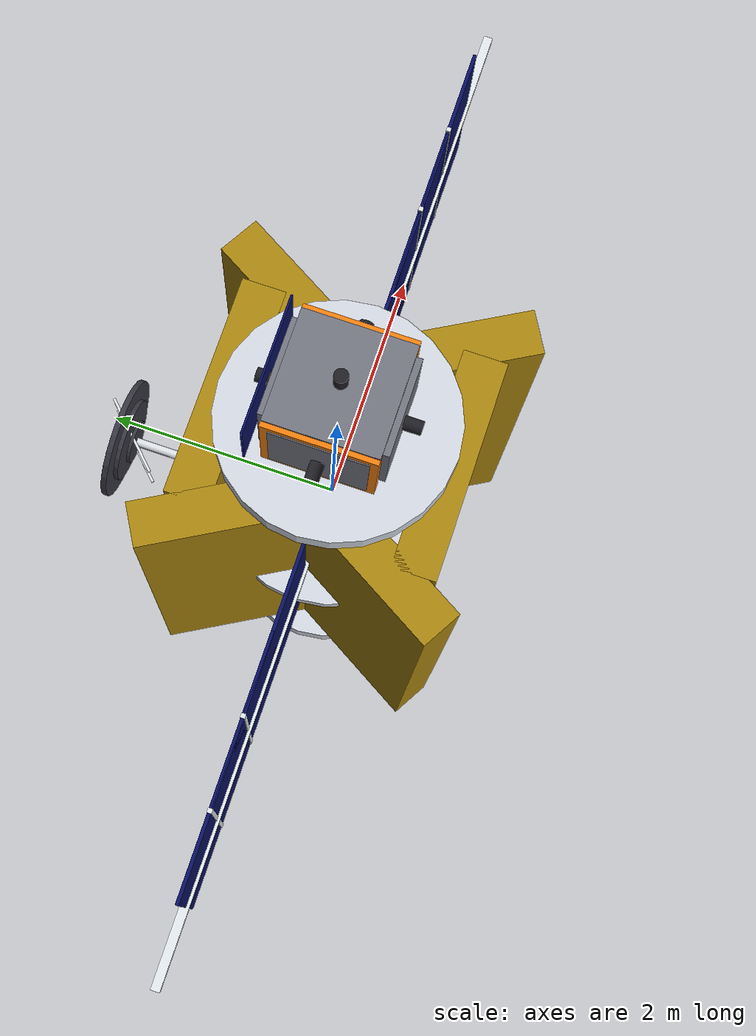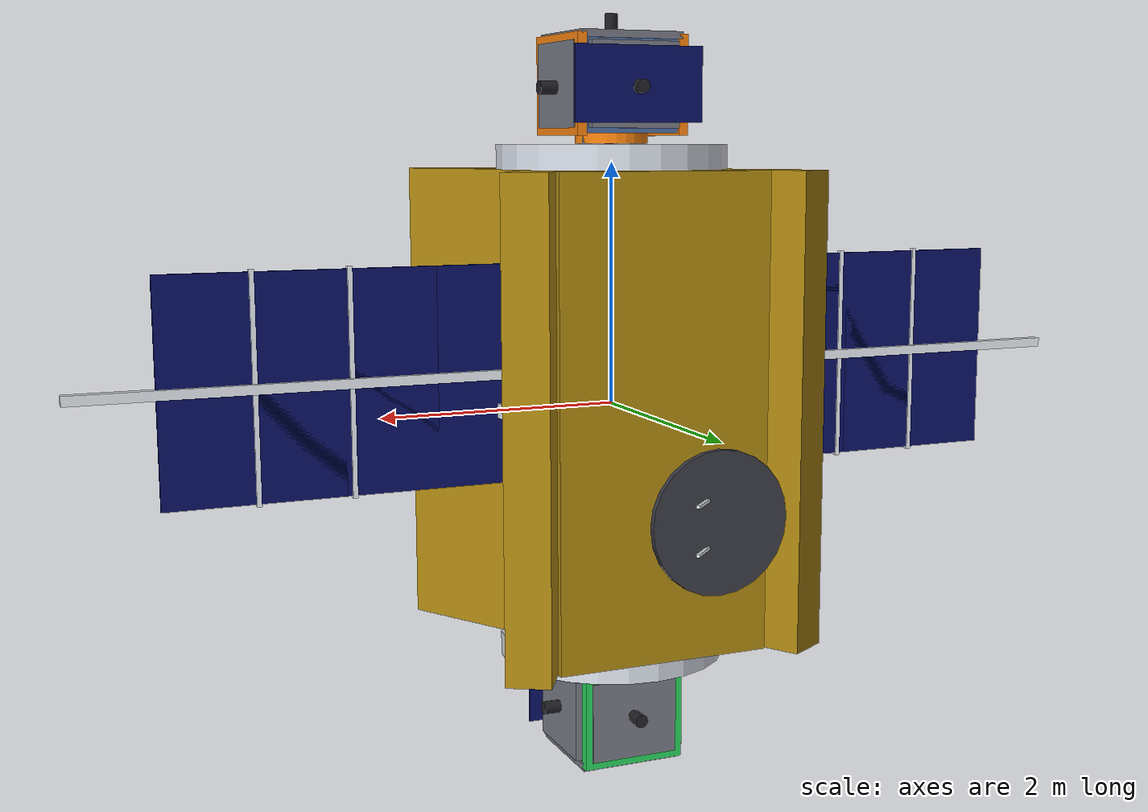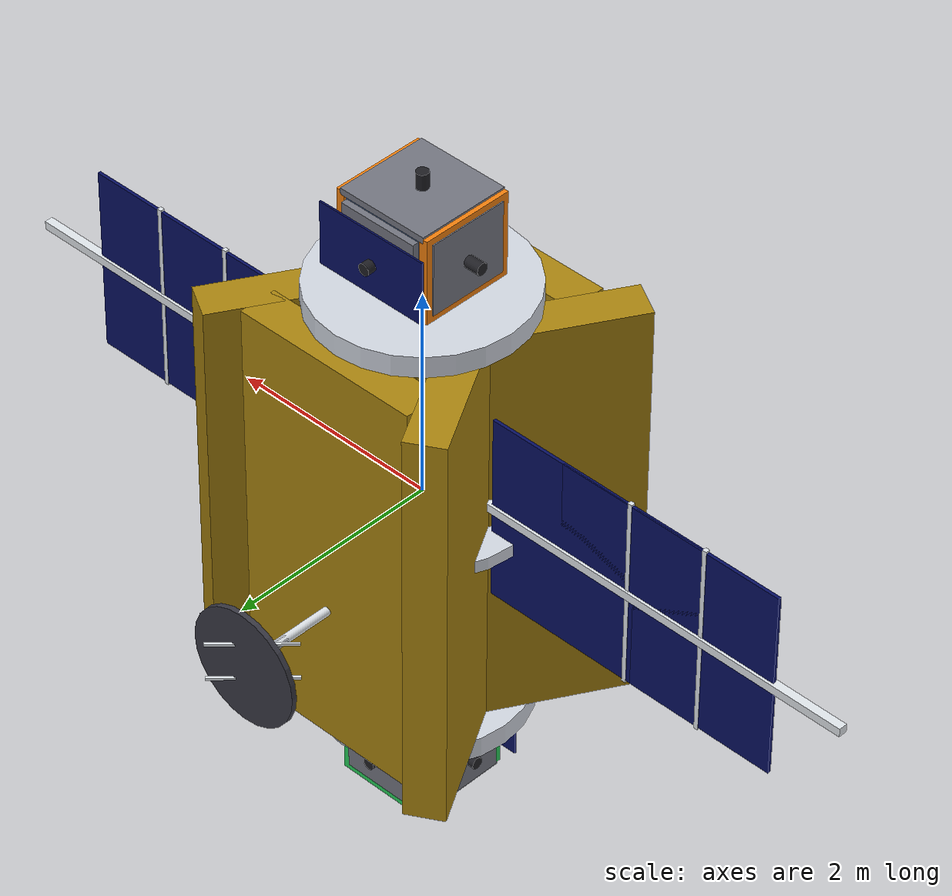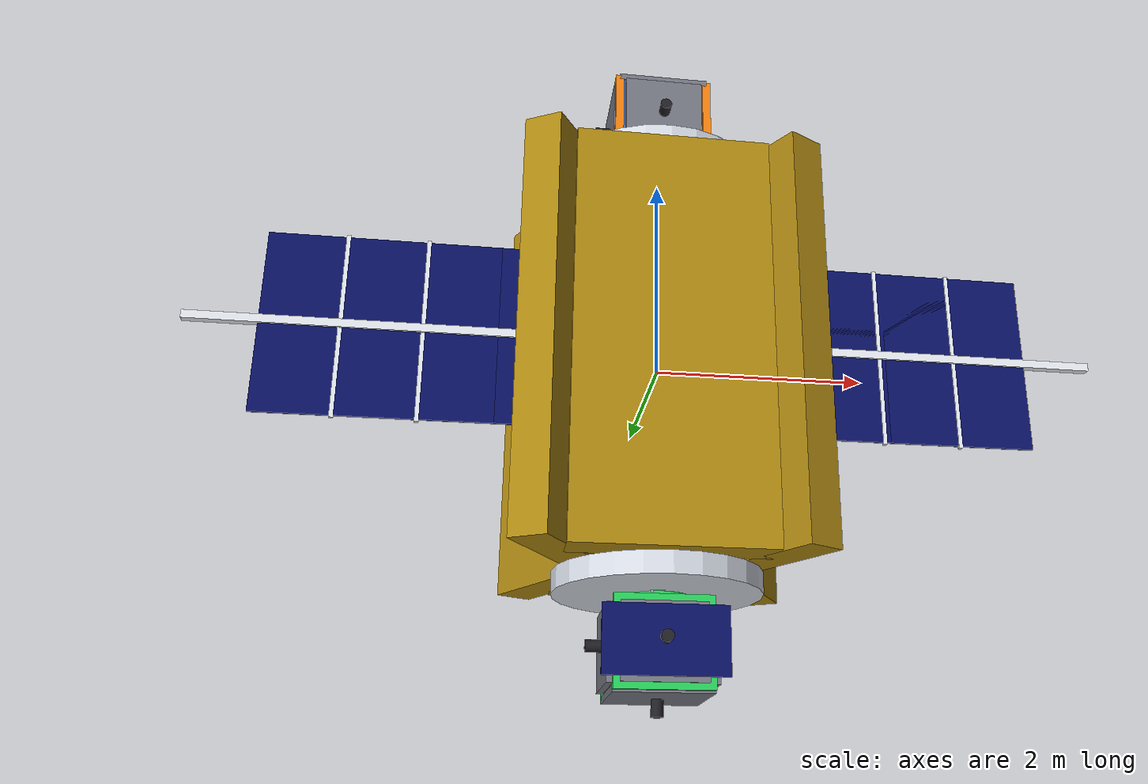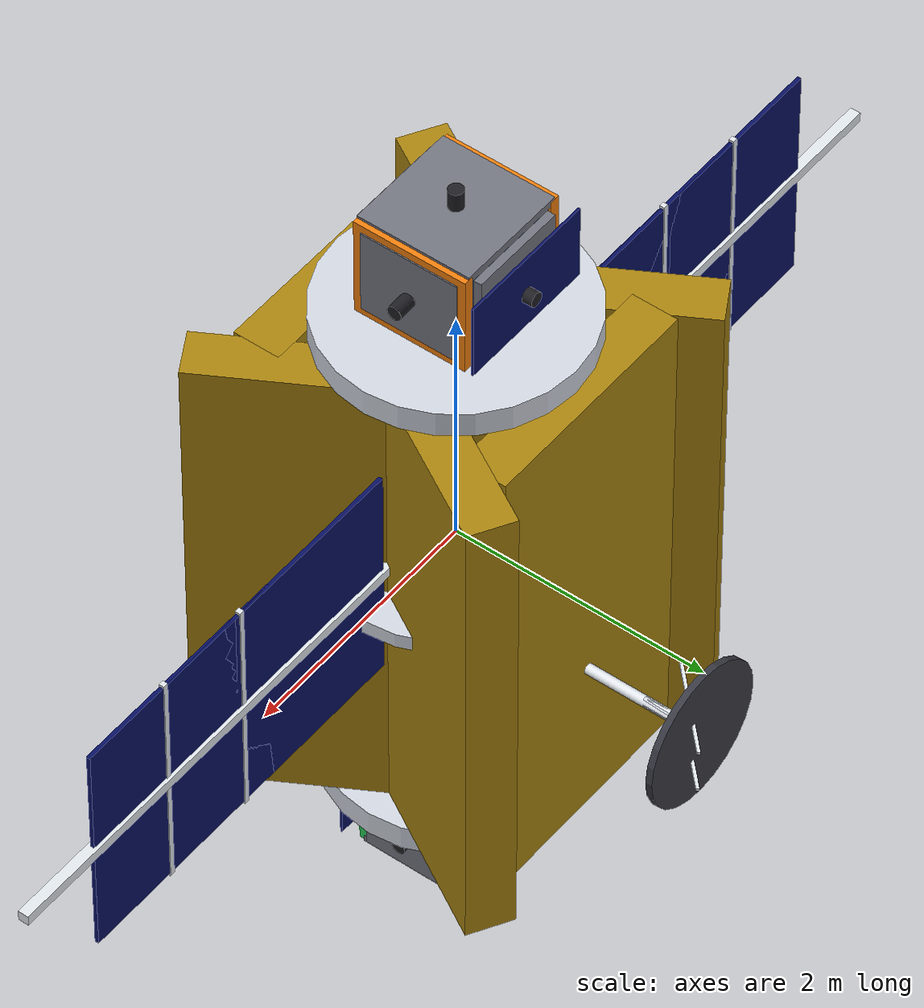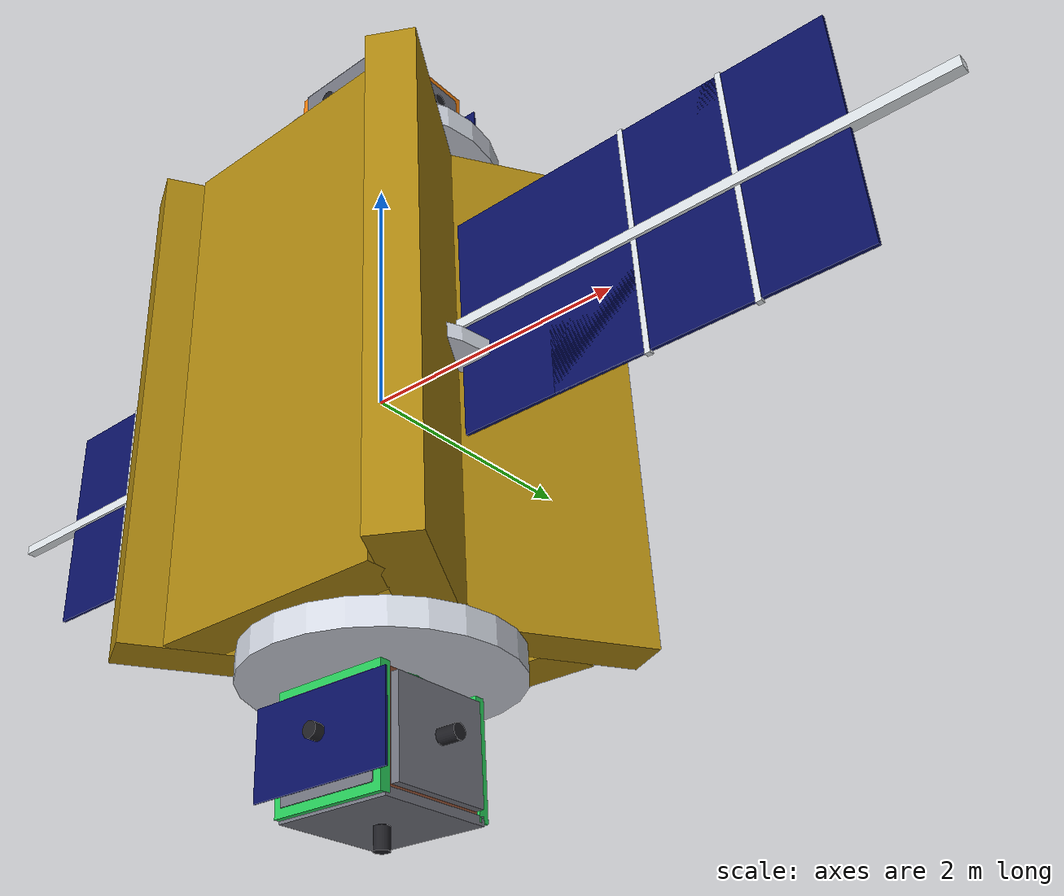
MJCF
<?xml version="1.0" encoding="utf-8"?>
<mujoco model="orbital_detumble_dual_chaser_yaw">

  <!-- ──────────────────────────── COMPILER ──────────────────────────────── -->
  <compiler angle="radian" autolimits="true"/>

  <!-- ──────────────────────────── SIMULATION ────────────────────────────── -->
  <option
    gravity    = "0 0 0"
    timestep   = "0.005"
    integrator = "RK4"
    cone       = "elliptic"
    impratio   = "10"
    tolerance  = "1e-10">
    <flag contact="disable"/>
  </option>

  <!-- ──────────────────────────── VISUAL QUALITY ────────────────────────── -->
  <visual>
    <global azimuth="135" elevation="-20" fovy="55"/>
    <quality shadowsize="4096" offsamples="8"/>
    <headlight
      ambient  = "0.04 0.04 0.06"
      diffuse  = "0.90 0.88 0.82"
      specular = "0.70 0.68 0.62"/>
    <rgba haze="0 0 0 0"/>
    <map stiffness="100" stiffnessrot="100" znear="0.05" zfar="2000"/>
  </visual>

  <!-- ──────────────────────────── ASSETS ────────────────────────────────── -->
  <asset>

    <texture name="tex_starfield"
             type="skybox" builtin="gradient"
             rgb1="0.000 0.000 0.010" rgb2="0.005 0.005 0.020"
             width="1024" height="1024"
             mark="random" markrgb="1.0 1.0 1.0" random="0.004"/>

    <texture name="tex_solar_cell"
             type="2d" builtin="checker"
             rgb1="0.02 0.04 0.28" rgb2="0.04 0.08 0.48"
             width="256" height="256" mark="none"/>
    <material name="mat_solar_cell"
              texture="tex_solar_cell" texrepeat="8 8"
              specular="0.55" shininess="0.65" reflectance="0.15" rgba="1 1 1 1"/>

    <texture name="tex_mli"
             type="2d" builtin="gradient"
             rgb1="0.78 0.62 0.08" rgb2="0.55 0.42 0.04"
             width="128" height="128"
             mark="random" markrgb="0.90 0.75 0.15" random="0.015"/>
    <material name="mat_mli_gold"
              texture="tex_mli" texrepeat="3 3"
              specular="0.80" shininess="0.75" reflectance="0.35" rgba="1 1 1 1"/>

    <material name="mat_silver_endcap"
              rgba="0.82 0.84 0.88 1" specular="0.95" shininess="0.90" reflectance="0.55"/>
    <material name="mat_radiator"
              rgba="0.10 0.10 0.14 1" specular="0.30" shininess="0.20"/>
    <material name="mat_strut"
              rgba="0.88 0.90 0.92 1" specular="0.55" shininess="0.40"/>
    <material name="mat_rcs_plate"
              rgba="0.45 0.46 0.50 1" specular="0.75" shininess="0.65"/>
    <material name="mat_nozzle"
              rgba="0.12 0.12 0.14 1" specular="0.92" shininess="0.88" reflectance="0.20"/>
    <!-- Yaw nozzle: distinct dark-green tint so they are visually identifiable -->
    <material name="mat_yaw_nozzle"
              rgba="0.08 0.20 0.12 1" specular="0.85" shininess="0.80"/>
    <material name="mat_chaserA_body"
              rgba="0.30 0.42 0.62 1" specular="0.80" shininess="0.70" reflectance="0.30"/>
    <material name="mat_chaserA_accent"
              rgba="0.95 0.50 0.05 1" specular="0.60" shininess="0.45"/>
    <material name="mat_chaserB_body"
              rgba="0.55 0.30 0.20 1" specular="0.80" shininess="0.70" reflectance="0.30"/>
    <material name="mat_chaserB_accent"
              rgba="0.15 0.80 0.35 1" specular="0.60" shininess="0.45"/>
    <material name="mat_grapple_arm"
              rgba="0.60 0.62 0.65 1" specular="0.88" shininess="0.80" reflectance="0.40"/>
    <material name="mat_dish"
              rgba="0.22 0.22 0.26 1" specular="0.70" shininess="0.60" reflectance="0.25"/>

  </asset>

  <!-- ──────────────────────────── DEFAULTS ──────────────────────────────── -->
  <default>
    <default class="phys">
      <geom condim="3" rgba="1 1 1 0" friction="0.8 0.02 0.001"/>
    </default>
    <default class="viz">
      <geom mass="0" contype="0" conaffinity="0"/>
    </default>
    <!-- Main RCS sites: cylinder nozzle shape -->
    <default class="rcs_main">
      <site size="0.045 0.045 0.08" type="cylinder"/>
    </default>
    <!-- Yaw RCS sites: smaller cylinder to reflect lower thrust -->
    <default class="rcs_yaw">
      <site size="0.030 0.030 0.06" type="cylinder"/>
    </default>
  </default>

  <!-- ══════════════════════════ WORLD BODY ══════════════════════════════════ -->
  <worldbody>

    <light name="sun"
           pos="80 -30 40" dir="-1 0.4 -0.5"
           diffuse="1.00 0.97 0.90" specular="0.80 0.78 0.70"
           directional="true" castshadow="true"/>
    <light name="earthshine"
           pos="-60 20 -30" dir="1 -0.3 0.5"
           diffuse="0.04 0.06 0.10" specular="0.01 0.01 0.02"
           directional="true" castshadow="false"/>

    <body name="satellite" pos="0 0 0" quat="1 0 0 0">
      <freejoint name="satellite_free"/>

      <!-- ── PHYSICS GEOMS (invisible, carry all mass) ── -->

      <!-- Debris: cylinder r=1.0, hl=2.0, mass=500 kg -->
      <geom name="phys_debris"
            class="phys" type="cylinder" size="1.0 2.0" pos="0 0 0"
            mass="500" rgba="1 1 1 0"/>

      <!-- Chaser A: box 0.5×0.5×0.5 at +Z pole, mass=50 kg -->
      <geom name="phys_chaserA"
            class="phys" type="box" size="0.5 0.5 0.5" pos="0 0 2.5"
            mass="50" rgba="1 1 1 0"/>

      <!-- Chaser B: box 0.5×0.5×0.5 at −Z pole, mass=50 kg -->
      <geom name="phys_chaserB"
            class="phys" type="box" size="0.5 0.5 0.5" pos="0 0 -2.5"
            mass="50" rgba="1 1 1 0"/>

      <!-- ── IMU SITE ── -->
      <site name="imu_site" pos="0 0 0" size="0.02" type="sphere"/>

      <geom name="viz_bus_f0" class="viz" type="box"
            size="0.90 0.18 1.95" pos="0 0.90 0" material="mat_mli_gold"/>
      <geom name="viz_bus_f1" class="viz" type="box"
            size="0.90 0.18 1.95" pos="0.779 0.45 0"
            euler="0 0 1.0472" material="mat_mli_gold"/>
      <geom name="viz_bus_f2" class="viz" type="box"
            size="0.90 0.18 1.95" pos="0.779 -0.45 0"
            euler="0 0 2.0944" material="mat_mli_gold"/>
      <geom name="viz_bus_f3" class="viz" type="box"
            size="0.90 0.18 1.95" pos="0 -0.90 0" material="mat_mli_gold"/>
      <geom name="viz_bus_f4" class="viz" type="box"
            size="0.90 0.18 1.95" pos="-0.779 -0.45 0"
            euler="0 0 1.0472" material="mat_mli_gold"/>
      <geom name="viz_bus_f5" class="viz" type="box"
            size="0.90 0.18 1.95" pos="-0.779 0.45 0"
            euler="0 0 2.0944" material="mat_mli_gold"/>

      <geom name="viz_endcap_north" class="viz" type="cylinder"
            size="0.95 0.10" pos="0 0 2.05" material="mat_silver_endcap"/>
      <geom name="viz_endcap_south" class="viz" type="cylinder"
            size="0.95 0.10" pos="0 0 -2.05" material="mat_silver_endcap"/>
      <geom name="viz_radiator_p" class="viz" type="box"
            size="0.82 0.02 1.60" pos="0 0.96 0" material="mat_radiator"/>
      <geom name="viz_radiator_n" class="viz" type="box"
            size="0.82 0.02 1.60" pos="0 -0.96 0" material="mat_radiator"/>
      <geom name="viz_equator_ring" class="viz" type="cylinder"
            size="1.02 0.06" pos="0 0 0" material="mat_silver_endcap"/>

      <geom name="viz_boom_px" class="viz" type="box"
            size="2.20 0.04 0.04" pos="2.20 0 0.30" material="mat_strut"/>
      <geom name="viz_panel_px_1" class="viz" type="box"
            size="0.72 0.015 0.90" pos="1.50 0 0.30" material="mat_solar_cell"/>
      <geom name="viz_panel_px_2" class="viz" type="box"
            size="0.72 0.015 0.90" pos="2.24 0 0.30" material="mat_solar_cell"/>
      <geom name="viz_panel_px_3" class="viz" type="box"
            size="0.72 0.015 0.90" pos="3.00 0 0.30" material="mat_solar_cell"/>
      <geom name="viz_strut_px_a" class="viz" type="box"
            size="0.02 0.02 0.92" pos="2.22 0 0.30" material="mat_strut"/>
      <geom name="viz_strut_px_b" class="viz" type="box"
            size="0.02 0.02 0.92" pos="2.98 0 0.30" material="mat_strut"/>

      <geom name="viz_boom_nx" class="viz" type="box"
            size="2.20 0.04 0.04" pos="-2.20 0 0.30" material="mat_strut"/>
      <geom name="viz_panel_nx_1" class="viz" type="box"
            size="0.72 0.015 0.90" pos="-1.50 0 0.30" material="mat_solar_cell"/>
      <geom name="viz_panel_nx_2" class="viz" type="box"
            size="0.72 0.015 0.90" pos="-2.24 0 0.30" material="mat_solar_cell"/>
      <geom name="viz_panel_nx_3" class="viz" type="box"
            size="0.72 0.015 0.90" pos="-3.00 0 0.30" material="mat_solar_cell"/>
      <geom name="viz_strut_nx_a" class="viz" type="box"
            size="0.02 0.02 0.92" pos="-2.22 0 0.30" material="mat_strut"/>
      <geom name="viz_strut_nx_b" class="viz" type="box"
            size="0.02 0.02 0.92" pos="-2.98 0 0.30" material="mat_strut"/>

      <!-- ══════════════════════════════════════════════════════════════════
           VISUAL GEOMS — HIGH-GAIN DISH (+Y axis)
           ══════════════════════════════════════════════════════════════════ -->

      <geom name="viz_dish_boom" class="viz" type="cylinder"
            size="0.04 0.50" pos="0 1.45 -0.60" euler="1.5708 0 0" material="mat_strut"/>
      <geom name="viz_dish_rim" class="viz" type="cylinder"
            size="0.55 0.025" pos="0 1.98 -0.60" euler="1.5708 0 0" material="mat_dish"/>
      <geom name="viz_dish_mid" class="viz" type="cylinder"
            size="0.38 0.020" pos="0 1.93 -0.60" euler="1.5708 0 0" material="mat_dish"/>
      <geom name="viz_dish_inner" class="viz" type="cylinder"
            size="0.20 0.015" pos="0 1.88 -0.60" euler="1.5708 0 0" material="mat_dish"/>
      <geom name="viz_dish_feedhorn" class="viz" type="cylinder"
            size="0.04 0.18" pos="0 1.72 -0.60" euler="1.5708 0 0" material="mat_silver_endcap"/>
      <geom name="viz_feedstrut_pp" class="viz" type="box"
            size="0.38 0.012 0.012" pos="0 1.90 -0.42" euler="0 0 0.7854" material="mat_strut"/>
      <geom name="viz_feedstrut_np" class="viz" type="box"
            size="0.38 0.012 0.012" pos="0 1.90 -0.78" euler="0 0 0.7854" material="mat_strut"/>

      <geom name="viz_chaA_bus" class="viz" type="box"
            size="0.42 0.42 0.38" pos="0 0 2.62" material="mat_chaserA_body"/>
      <geom name="viz_chaA_topdeck" class="viz" type="box"
            size="0.44 0.44 0.03" pos="0 0 3.01" material="mat_rcs_plate"/>
      <geom name="viz_chaA_adapter" class="viz" type="cylinder"
            size="0.30 0.06" pos="0 0 2.22" material="mat_chaserA_accent"/>
      <geom name="viz_chaA_stripe_px" class="viz" type="box"
            size="0.04 0.44 0.40" pos="0.44 0 2.62" material="mat_chaserA_accent"/>
      <geom name="viz_chaA_stripe_nx" class="viz" type="box"
            size="0.04 0.44 0.40" pos="-0.44 0 2.62" material="mat_chaserA_accent"/>
      <geom name="viz_chaA_panel" class="viz" type="box"
            size="0.55 0.008 0.30" pos="0 0.55 2.62" material="mat_solar_cell"/>
      <geom name="viz_chaA_rcsplate_px" class="viz" type="box"
            size="0.03 0.38 0.34" pos="0.46 0 2.62" material="mat_rcs_plate"/>
      <geom name="viz_chaA_rcsplate_nx" class="viz" type="box"
            size="0.03 0.38 0.34" pos="-0.46 0 2.62" material="mat_rcs_plate"/>
      <geom name="viz_chaA_rcsplate_py" class="viz" type="box"
            size="0.38 0.03 0.34" pos="0 0.46 2.62" material="mat_rcs_plate"/>
      <geom name="viz_chaA_rcsplate_ny" class="viz" type="box"
            size="0.38 0.03 0.34" pos="0 -0.46 2.62" material="mat_rcs_plate"/>
      <!-- Grappling arms A -->
      <geom name="viz_chaA_arm_upper" class="viz" type="box"
            size="0.04 0.04 0.22" pos="0.25 0 2.35" euler="0.3 0 0" material="mat_grapple_arm"/>
      <geom name="viz_chaA_arm_lower" class="viz" type="box"
            size="0.04 0.04 0.22" pos="0.25 0 2.12" euler="-0.3 0 0" material="mat_grapple_arm"/>
      <geom name="viz_chaA_claw" class="viz" type="sphere"
            size="0.06" pos="0.25 0 2.00" material="mat_chaserA_accent"/>
      <geom name="viz_chaA_arm2_upper" class="viz" type="box"
            size="0.04 0.04 0.22" pos="-0.25 0 2.35" euler="-0.3 0 0" material="mat_grapple_arm"/>
      <geom name="viz_chaA_arm2_lower" class="viz" type="box"
            size="0.04 0.04 0.22" pos="-0.25 0 2.12" euler="0.3 0 0" material="mat_grapple_arm"/>
      <geom name="viz_chaA_claw2" class="viz" type="sphere"
            size="0.06" pos="-0.25 0 2.00" material="mat_chaserA_accent"/>

      <geom name="viz_chaB_bus" class="viz" type="box"
            size="0.42 0.42 0.38" pos="0 0 -2.62" material="mat_chaserB_body"/>
      <geom name="viz_chaB_botdeck" class="viz" type="box"
            size="0.44 0.44 0.03" pos="0 0 -3.01" material="mat_rcs_plate"/>
      <geom name="viz_chaB_adapter" class="viz" type="cylinder"
            size="0.30 0.06" pos="0 0 -2.22" material="mat_chaserB_accent"/>
      <geom name="viz_chaB_stripe_py" class="viz" type="box"
            size="0.44 0.04 0.40" pos="0 0.44 -2.62" material="mat_chaserB_accent"/>
      <geom name="viz_chaB_stripe_ny" class="viz" type="box"
            size="0.44 0.04 0.40" pos="0 -0.44 -2.62" material="mat_chaserB_accent"/>
      <geom name="viz_chaB_panel" class="viz" type="box"
            size="0.55 0.008 0.30" pos="0 -0.55 -2.62" material="mat_solar_cell"/>
      <geom name="viz_chaB_rcsplate_px" class="viz" type="box"
            size="0.03 0.38 0.34" pos="0.46 0 -2.62" material="mat_rcs_plate"/>
      <geom name="viz_chaB_rcsplate_nx" class="viz" type="box"
            size="0.03 0.38 0.34" pos="-0.46 0 -2.62" material="mat_rcs_plate"/>
      <geom name="viz_chaB_rcsplate_py" class="viz" type="box"
            size="0.38 0.03 0.34" pos="0 0.46 -2.62" material="mat_rcs_plate"/>
      <geom name="viz_chaB_rcsplate_ny" class="viz" type="box"
            size="0.38 0.03 0.34" pos="0 -0.46 -2.62" material="mat_rcs_plate"/>
      <!-- Grappling arms B -->
      <geom name="viz_chaB_arm_upper" class="viz" type="box"
            size="0.04 0.04 0.22" pos="0 0.25 -2.35" euler="0 0.3 0" material="mat_grapple_arm"/>
      <geom name="viz_chaB_arm_lower" class="viz" type="box"
            size="0.04 0.04 0.22" pos="0 0.25 -2.12" euler="0 -0.3 0" material="mat_grapple_arm"/>
      <geom name="viz_chaB_claw" class="viz" type="sphere"
            size="0.06" pos="0 0.25 -2.00" material="mat_chaserB_accent"/>
      <geom name="viz_chaB_arm2_upper" class="viz" type="box"
            size="0.04 0.04 0.22" pos="0 -0.25 -2.35" euler="0 -0.3 0" material="mat_grapple_arm"/>
      <geom name="viz_chaB_arm2_lower" class="viz" type="box"
            size="0.04 0.04 0.22" pos="0 -0.25 -2.12" euler="0 0.3 0" material="mat_grapple_arm"/>
      <geom name="viz_chaB_claw2" class="viz" type="sphere"
            size="0.06" pos="0 -0.25 -2.00" material="mat_chaserB_accent"/>

      <!-- idx 0  A_thr_px  F=−X  τy=−2.60 -->
      <site name="A_thr_px" class="rcs_main"
            pos=" 0.50 0 2.60" euler="0 -1.5708 0" material="mat_nozzle"/>
      <!-- idx 1  A_thr_nx  F=+X  τy=+2.60 -->
      <site name="A_thr_nx" class="rcs_main"
            pos="-0.50 0 2.60" euler="0  1.5708 0" material="mat_nozzle"/>
      <!-- idx 2  A_thr_py  F=+Y  τx=−2.60 -->
      <site name="A_thr_py" class="rcs_main"
            pos="0  0.50 2.60" euler="-1.5708 0 0" material="mat_nozzle"/>
      <!-- idx 3  A_thr_ny  F=−Y  τx=+2.60 -->
      <site name="A_thr_ny" class="rcs_main"
            pos="0 -0.50 2.60" euler=" 1.5708 0 0" material="mat_nozzle"/>
      <!-- idx 4  A_thr_pz  F=+Z  no torque -->
      <site name="A_thr_pz" class="rcs_main"
            pos="0 0 3.05" euler="0 0 0" material="mat_nozzle"/>
      <!-- idx 5  A_thr_nz  F=−Z  no torque -->
      <site name="A_thr_nz" class="rcs_main"
            pos="0 0 2.18" euler="3.14159 0 0" material="mat_nozzle"/>

      <!-- ── CHASER A MAIN NOZZLE BELLS (visual) ── -->
      <geom name="viz_A_noz_px" class="viz" type="cylinder"
            size="0.055 0.075" pos=" 0.56 0 2.60" euler="0 1.5708 0" material="mat_nozzle"/>
      <geom name="viz_A_noz_nx" class="viz" type="cylinder"
            size="0.055 0.075" pos="-0.56 0 2.60" euler="0 1.5708 0" material="mat_nozzle"/>
      <geom name="viz_A_noz_py" class="viz" type="cylinder"
            size="0.055 0.075" pos="0  0.56 2.60" euler="1.5708 0 0" material="mat_nozzle"/>
      <geom name="viz_A_noz_ny" class="viz" type="cylinder"
            size="0.055 0.075" pos="0 -0.56 2.60" euler="1.5708 0 0" material="mat_nozzle"/>
      <geom name="viz_A_noz_pz" class="viz" type="cylinder"
            size="0.055 0.075" pos="0 0 3.12"  euler="0 0 0"      material="mat_nozzle"/>
      <geom name="viz_A_noz_nz" class="viz" type="cylinder"
            size="0.055 0.075" pos="0 0 2.12"  euler="0 0 0"      material="mat_nozzle"/>

      <!-- ══════════════════════════════════════════════════════════════════
           RCS SITES — CHASER B MAIN  (idx 6–11)
           ══════════════════════════════════════════════════════════════════ -->

      <!-- idx 6  B_thr_px  F=−X  τy=+2.60 -->
      <site name="B_thr_px" class="rcs_main"
            pos=" 0.50 0 -2.60" euler="0 -1.5708 0" material="mat_nozzle"/>
      <!-- idx 7  B_thr_nx  F=+X  τy=−2.60 -->
      <site name="B_thr_nx" class="rcs_main"
            pos="-0.50 0 -2.60" euler="0  1.5708 0" material="mat_nozzle"/>
      <!-- idx 8  B_thr_py  F=+Y  τx=+2.60 -->
      <site name="B_thr_py" class="rcs_main"
            pos="0  0.50 -2.60" euler="-1.5708 0 0" material="mat_nozzle"/>
      <!-- idx 9  B_thr_ny  F=−Y  τx=−2.60 -->
      <site name="B_thr_ny" class="rcs_main"
            pos="0 -0.50 -2.60" euler=" 1.5708 0 0" material="mat_nozzle"/>
      <!-- idx 10 B_thr_pz  F=+Z  no torque -->
      <site name="B_thr_pz" class="rcs_main"
            pos="0 0 -2.18" euler="0 0 0" material="mat_nozzle"/>
      <!-- idx 11 B_thr_nz  F=−Z  no torque -->
      <site name="B_thr_nz" class="rcs_main"
            pos="0 0 -3.05" euler="3.14159 0 0" material="mat_nozzle"/>

      <!-- ── CHASER B MAIN NOZZLE BELLS (visual) ── -->
      <geom name="viz_B_noz_px" class="viz" type="cylinder"
            size="0.055 0.075" pos=" 0.56 0 -2.60" euler="0 1.5708 0" material="mat_nozzle"/>
      <geom name="viz_B_noz_nx" class="viz" type="cylinder"
            size="0.055 0.075" pos="-0.56 0 -2.60" euler="0 1.5708 0" material="mat_nozzle"/>
      <geom name="viz_B_noz_py" class="viz" type="cylinder"
            size="0.055 0.075" pos="0  0.56 -2.60" euler="1.5708 0 0" material="mat_nozzle"/>
      <geom name="viz_B_noz_ny" class="viz" type="cylinder"
            size="0.055 0.075" pos="0 -0.56 -2.60" euler="1.5708 0 0" material="mat_nozzle"/>
      <geom name="viz_B_noz_pz" class="viz" type="cylinder"
            size="0.055 0.075" pos="0 0 -2.12" euler="0 0 0"      material="mat_nozzle"/>
      <geom name="viz_B_noz_nz" class="viz" type="cylinder"
            size="0.055 0.075" pos="0 0 -3.12" euler="0 0 0"      material="mat_nozzle"/>

      <!-- idx 12  A_yaw_p1  F=−X @ y=+0.35  → τz=+0.35 (fire with idx 13) -->
      <site name="A_yaw_p1" class="rcs_yaw"
            pos="0  0.35 2.60" euler="0 -1.5708 0" material="mat_yaw_nozzle"/>
      <!-- idx 13  A_yaw_p2  F=+X @ y=−0.35  → τz=+0.35 (fire with idx 12) -->
      <site name="A_yaw_p2" class="rcs_yaw"
            pos="0 -0.35 2.60" euler="0  1.5708 0" material="mat_yaw_nozzle"/>
      <!-- idx 14  B_yaw_p1  F=−X @ y=+0.35  → τz=+0.35 (fire with idx 15) -->
      <site name="B_yaw_p1" class="rcs_yaw"
            pos="0  0.35 -2.60" euler="0 -1.5708 0" material="mat_yaw_nozzle"/>
      <!-- idx 15  B_yaw_p2  F=+X @ y=−0.35  → τz=+0.35 (fire with idx 14) -->
      <site name="B_yaw_p2" class="rcs_yaw"
            pos="0 -0.35 -2.60" euler="0  1.5708 0" material="mat_yaw_nozzle"/>
      <!-- idx 16  A_yaw_n1  F=+X @ y=+0.35  → τz=−0.35 (fire with idx 17) -->
      <site name="A_yaw_n1" class="rcs_yaw"
            pos="0  0.35 2.60" euler="0  1.5708 0" material="mat_yaw_nozzle"/>
      <!-- idx 17  A_yaw_n2  F=−X @ y=−0.35  → τz=−0.35 (fire with idx 16) -->
      <site name="A_yaw_n2" class="rcs_yaw"
            pos="0 -0.35 2.60" euler="0 -1.5708 0" material="mat_yaw_nozzle"/>
      <!-- idx 18  B_yaw_n1  F=+X @ y=+0.35  → τz=−0.35 (fire with idx 19) -->
      <site name="B_yaw_n1" class="rcs_yaw"
            pos="0  0.35 -2.60" euler="0  1.5708 0" material="mat_yaw_nozzle"/>
      <!-- idx 19  B_yaw_n2  F=−X @ y=−0.35  → τz=−0.35 (fire with idx 18) -->
      <site name="B_yaw_n2" class="rcs_yaw"
            pos="0 -0.35 -2.60" euler="0 -1.5708 0" material="mat_yaw_nozzle"/>

      <!-- ── YAW NOZZLE BELLS (visual, smaller, dark green tint) ── -->
      <geom name="viz_A_yaw_p1_bell" class="viz" type="cylinder"
            size="0.035 0.055" pos="0  0.42 2.60" euler="0 1.5708 0" material="mat_yaw_nozzle"/>
      <geom name="viz_A_yaw_p2_bell" class="viz" type="cylinder"
            size="0.035 0.055" pos="0 -0.42 2.60" euler="0 1.5708 0" material="mat_yaw_nozzle"/>
      <geom name="viz_A_yaw_n1_bell" class="viz" type="cylinder"
            size="0.035 0.055" pos="0  0.42 2.60" euler="0 1.5708 0" material="mat_yaw_nozzle"/>
      <geom name="viz_A_yaw_n2_bell" class="viz" type="cylinder"
            size="0.035 0.055" pos="0 -0.42 2.60" euler="0 1.5708 0" material="mat_yaw_nozzle"/>
      <geom name="viz_B_yaw_p1_bell" class="viz" type="cylinder"
            size="0.035 0.055" pos="0  0.42 -2.60" euler="0 1.5708 0" material="mat_yaw_nozzle"/>
      <geom name="viz_B_yaw_p2_bell" class="viz" type="cylinder"
            size="0.035 0.055" pos="0 -0.42 -2.60" euler="0 1.5708 0" material="mat_yaw_nozzle"/>
      <geom name="viz_B_yaw_n1_bell" class="viz" type="cylinder"
            size="0.035 0.055" pos="0  0.42 -2.60" euler="0 1.5708 0" material="mat_yaw_nozzle"/>
      <geom name="viz_B_yaw_n2_bell" class="viz" type="cylinder"
            size="0.035 0.055" pos="0 -0.42 -2.60" euler="0 1.5708 0" material="mat_yaw_nozzle"/>

    </body><!-- end satellite -->

  </worldbody>

  <!-- ══════════════════════════ SENSORS ════════════════════════════════════ -->
  <sensor>
    <gyro          name="imu_gyro"   site="imu_site" noise="0.0001"/>
    <accelerometer name="imu_accel"  site="imu_site" noise="0.0005"/>
    <framequat     name="imu_quat"   objtype="site" objname="imu_site" noise="0.0001"/>
    <frameangvel   name="sat_angvel" objtype="body" objname="satellite"/>
    <framelinvel   name="sat_linvel" objtype="body" objname="satellite"/>
  </sensor>

  <!-- ══════════════════════════ ACTUATORS ══════════════════════════════════ -->
  <actuator>

    <!-- ── CHASER A MAIN RCS (idx 0–5) ── -->
    <general name="A_thr_px" site="A_thr_px"
             gear="0 0 100 0 0 0" ctrlrange="0 1"
             ctrllimited="true" forcelimited="true" forcerange="0 100"/>
    <general name="A_thr_nx" site="A_thr_nx"
             gear="0 0 100 0 0 0" ctrlrange="0 1"
             ctrllimited="true" forcelimited="true" forcerange="0 100"/>
    <general name="A_thr_py" site="A_thr_py"
             gear="0 0 100 0 0 0" ctrlrange="0 1"
             ctrllimited="true" forcelimited="true" forcerange="0 100"/>
    <general name="A_thr_ny" site="A_thr_ny"
             gear="0 0 100 0 0 0" ctrlrange="0 1"
             ctrllimited="true" forcelimited="true" forcerange="0 100"/>
    <general name="A_thr_pz" site="A_thr_pz"
             gear="0 0 100 0 0 0" ctrlrange="0 1"
             ctrllimited="true" forcelimited="true" forcerange="0 100"/>
    <general name="A_thr_nz" site="A_thr_nz"
             gear="0 0 100 0 0 0" ctrlrange="0 1"
             ctrllimited="true" forcelimited="true" forcerange="0 100"/>

    <!-- ── CHASER B MAIN RCS (idx 6–11) ── -->
    <general name="B_thr_px" site="B_thr_px"
             gear="0 0 100 0 0 0" ctrlrange="0 1"
             ctrllimited="true" forcelimited="true" forcerange="0 100"/>
    <general name="B_thr_nx" site="B_thr_nx"
             gear="0 0 100 0 0 0" ctrlrange="0 1"
             ctrllimited="true" forcelimited="true" forcerange="0 100"/>
    <general name="B_thr_py" site="B_thr_py"
             gear="0 0 100 0 0 0" ctrlrange="0 1"
             ctrllimited="true" forcelimited="true" forcerange="0 100"/>
    <general name="B_thr_ny" site="B_thr_ny"
             gear="0 0 100 0 0 0" ctrlrange="0 1"
             ctrllimited="true" forcelimited="true" forcerange="0 100"/>
    <general name="B_thr_pz" site="B_thr_pz"
             gear="0 0 100 0 0 0" ctrlrange="0 1"
             ctrllimited="true" forcelimited="true" forcerange="0 100"/>
    <general name="B_thr_nz" site="B_thr_nz"
             gear="0 0 100 0 0 0" ctrlrange="0 1"
             ctrllimited="true" forcelimited="true" forcerange="0 100"/>

    <!-- ── CHASER A YAW RCS (idx 12–17) ── -->
    <!-- +yaw pair: fire 12+13 together → net τz = +14 N·m (0 cross-torque) -->
    <general name="A_yaw_p1" site="A_yaw_p1"
             gear="0 0 20 0 0 0" ctrlrange="0 1"
             ctrllimited="true" forcelimited="true" forcerange="0 20"/>
    <general name="A_yaw_p2" site="A_yaw_p2"
             gear="0 0 20 0 0 0" ctrlrange="0 1"
             ctrllimited="true" forcelimited="true" forcerange="0 20"/>
    <!-- B yaw +: fire 14+15 together -->
    <general name="B_yaw_p1" site="B_yaw_p1"
             gear="0 0 20 0 0 0" ctrlrange="0 1"
             ctrllimited="true" forcelimited="true" forcerange="0 20"/>
    <general name="B_yaw_p2" site="B_yaw_p2"
             gear="0 0 20 0 0 0" ctrlrange="0 1"
             ctrllimited="true" forcelimited="true" forcerange="0 20"/>
    <!-- −yaw pair: fire 16+17 together → net τz = −14 N·m (0 cross-torque) -->
    <general name="A_yaw_n1" site="A_yaw_n1"
             gear="0 0 20 0 0 0" ctrlrange="0 1"
             ctrllimited="true" forcelimited="true" forcerange="0 20"/>
    <general name="A_yaw_n2" site="A_yaw_n2"
             gear="0 0 20 0 0 0" ctrlrange="0 1"
             ctrllimited="true" forcelimited="true" forcerange="0 20"/>
    <!-- B yaw −: fire 18+19 together -->
    <general name="B_yaw_n1" site="B_yaw_n1"
             gear="0 0 20 0 0 0" ctrlrange="0 1"
             ctrllimited="true" forcelimited="true" forcerange="0 20"/>
    <general name="B_yaw_n2" site="B_yaw_n2"
             gear="0 0 20 0 0 0" ctrlrange="0 1"
             ctrllimited="true" forcelimited="true" forcerange="0 20"/>

  </actuator>

</mujoco>
